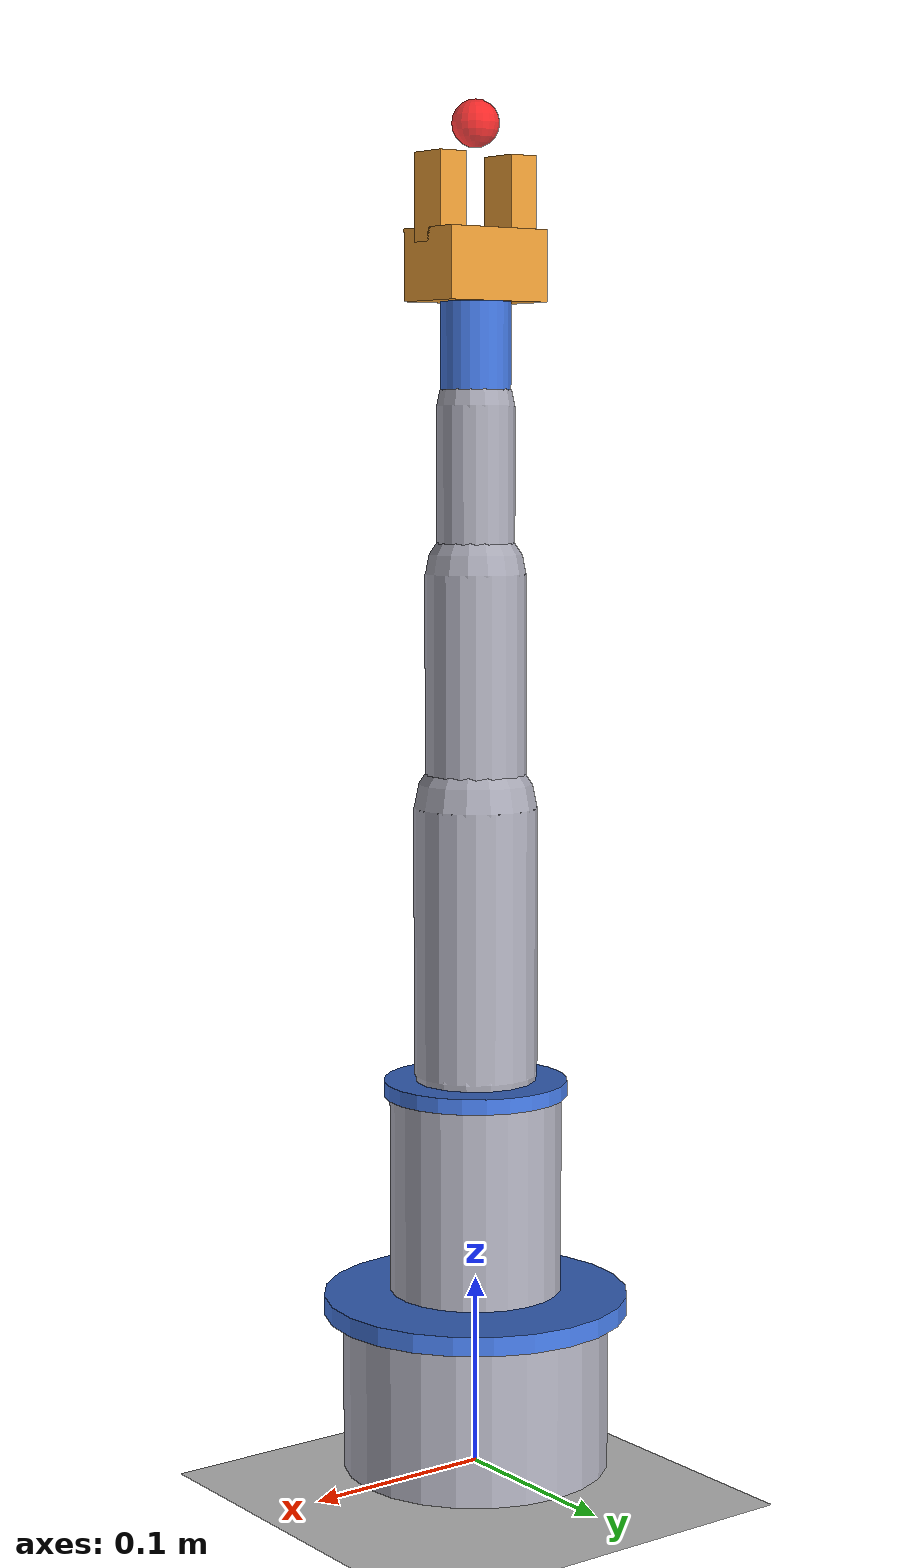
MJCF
<?xml version="1.0" encoding="utf-8"?>
<mujoco model="so_arm101">
  <compiler angle="radian" coordinate="local"/>
  <option gravity="0 0 -9.81" timestep="0.002"/>

  <default>
    <joint limited="true" damping="0.5" armature="0.01"/>
    <geom contype="1" conaffinity="1" friction="1 0.005 0.0001"/>
  </default>

  <asset>
    <material name="metal"   rgba="0.65 0.65 0.70 1"/>
    <material name="joint"   rgba="0.25 0.45 0.85 1"/>
    <material name="gripper" rgba="0.90 0.60 0.20 1"/>
    <material name="floor"   rgba="0.85 0.85 0.85 1"/>
  </asset>

  <worldbody>
    <light pos="0 0 3"   dir="0 0 -1"   diffuse="0.8 0.8 0.8"/>
    <light pos="1 1 1.5" dir="-1 -1 -1" diffuse="0.4 0.4 0.4"/>
    <geom name="floor" type="plane" size="1 1 0.1" material="floor" pos="0 0 -0.01"/>

    <!-- ── Base ──────────────────────────────────────────────────── -->
    <body name="base" pos="0 0 0">
      <geom name="base_col"  type="cylinder" size="0.07 0.045" material="metal" pos="0 0 0.045"/>
      <geom name="base_ring" type="cylinder" size="0.08 0.005" material="joint" pos="0 0 0.088"/>
      <inertial pos="0 0 0.045" mass="0.6" diaginertia="0.002 0.002 0.002"/>

      <!-- ── Joint 1: Base Rotation (Z) ────────────────────────── -->
      <body name="link1" pos="0 0 0.095">
        <joint name="joint1_rotation" type="hinge" axis="0 0 1" range="-3.14159 3.14159"/>
        <geom name="j1_body" type="cylinder" size="0.045 0.055" material="metal"  pos="0 0 0.055"/>
        <geom name="j1_ring" type="cylinder" size="0.048 0.004" material="joint"  pos="0 0 0.108"/>
        <inertial pos="0 0 0.055" mass="0.32" diaginertia="0.0006 0.0006 0.0003"/>

        <!-- ── Joint 2: Shoulder Pitch (Y) ───────────────────────── -->
        <body name="link2" pos="0 0 0.115">
          <joint name="joint2_pitch" type="hinge" axis="0 1 0" range="-1.5708 1.5708"/>
          <geom name="j2_cap" type="capsule" size="0.032" fromto="0 0 0 0 0 0.140" material="metal"/>
          <inertial pos="0 0 0.070" mass="0.26" diaginertia="0.0004 0.0004 0.0001"/>

          <!-- ── Joint 3: Elbow Pitch (Y) ────────────────────────── -->
          <body name="link3" pos="0 0 0.140">
            <joint name="joint3_elbow" type="hinge" axis="0 1 0" range="-2.618 2.618"/>
            <geom name="j3_cap" type="capsule" size="0.026" fromto="0 0 0 0 0 0.120" material="metal"/>
            <inertial pos="0 0 0.060" mass="0.21" diaginertia="0.0003 0.0003 0.0001"/>

            <!-- ── Joint 4: Wrist Pitch (Y) ──────────────────────── -->
            <body name="link4" pos="0 0 0.120">
              <joint name="joint4_wrist_pitch" type="hinge" axis="0 1 0" range="-1.5708 1.5708"/>
              <geom name="j4_cap" type="capsule" size="0.020" fromto="0 0 0 0 0 0.085" material="metal"/>
              <inertial pos="0 0 0.042" mass="0.15" diaginertia="0.0001 0.0001 0.00005"/>

              <!-- ── Joint 5: Wrist Roll (Z) ────────────────────── -->
              <body name="link5" pos="0 0 0.085">
                <joint name="joint5_wrist_roll" type="hinge" axis="0 0 1" range="-3.14159 3.14159"/>
                <geom name="j5_body" type="cylinder" size="0.018 0.028" material="joint" pos="0 0 0.028"/>
                <inertial pos="0 0 0.028" mass="0.10" diaginertia="0.00005 0.00005 0.00003"/>

                <!-- ── Gripper ───────────────────────────────────── -->
                <body name="gripper_base" pos="0 0 0.060">
                  <geom name="grip_body" type="box" size="0.030 0.020 0.018" material="gripper" pos="0 0 0.010"/>
                  <inertial pos="0 0 0.010" mass="0.09" diaginertia="0.00003 0.00003 0.00002"/>

                  <body name="finger_left" pos="-0.022 0 0.030">
                    <joint name="gripper_left" type="slide" axis="-1 0 0" range="0 0.025"/>
                    <geom type="box" size="0.008 0.011 0.022" material="gripper" pos="0 0 0.013"/>
                    <inertial pos="0 0 0.013" mass="0.020" diaginertia="0.000005 0.000005 0.000002"/>
                  </body>

                  <body name="finger_right" pos="0.022 0 0.030">
                    <joint name="gripper_right" type="slide" axis="1 0 0" range="0 0.025"/>
                    <geom type="box" size="0.008 0.011 0.022" material="gripper" pos="0 0 0.013"/>
                    <inertial pos="0 0 0.013" mass="0.020" diaginertia="0.000005 0.000005 0.000002"/>
                  </body>

                  <!-- TCP: Tool Center Point -->
                  <site name="end_effector" pos="0 0 0.080" size="0.012" rgba="1 0 0 0.8"/>
                </body>
              </body>
            </body>
          </body>
        </body>
      </body>
    </body>
  </worldbody>

  <!-- ── Position-controlled actuators ──────────────────────────────── -->
  <actuator>
    <position name="act_j1" joint="joint1_rotation"   kp="60" gear="1"/>
    <position name="act_j2" joint="joint2_pitch"       kp="60" gear="1"/>
    <position name="act_j3" joint="joint3_elbow"       kp="60" gear="1"/>
    <position name="act_j4" joint="joint4_wrist_pitch" kp="40" gear="1"/>
    <position name="act_j5" joint="joint5_wrist_roll"  kp="30" gear="1"/>
    <position name="act_gl" joint="gripper_left"        kp="25" gear="1"/>
    <position name="act_gr" joint="gripper_right"       kp="25" gear="1"/>
  </actuator>

  <!-- ── Sensors ────────────────────────────────────────────────────── -->
  <sensor>
    <framepos  name="tcp_pos"  objtype="site" objname="end_effector"/>
    <framequat name="tcp_quat" objtype="site" objname="end_effector"/>
  </sensor>

</mujoco>
